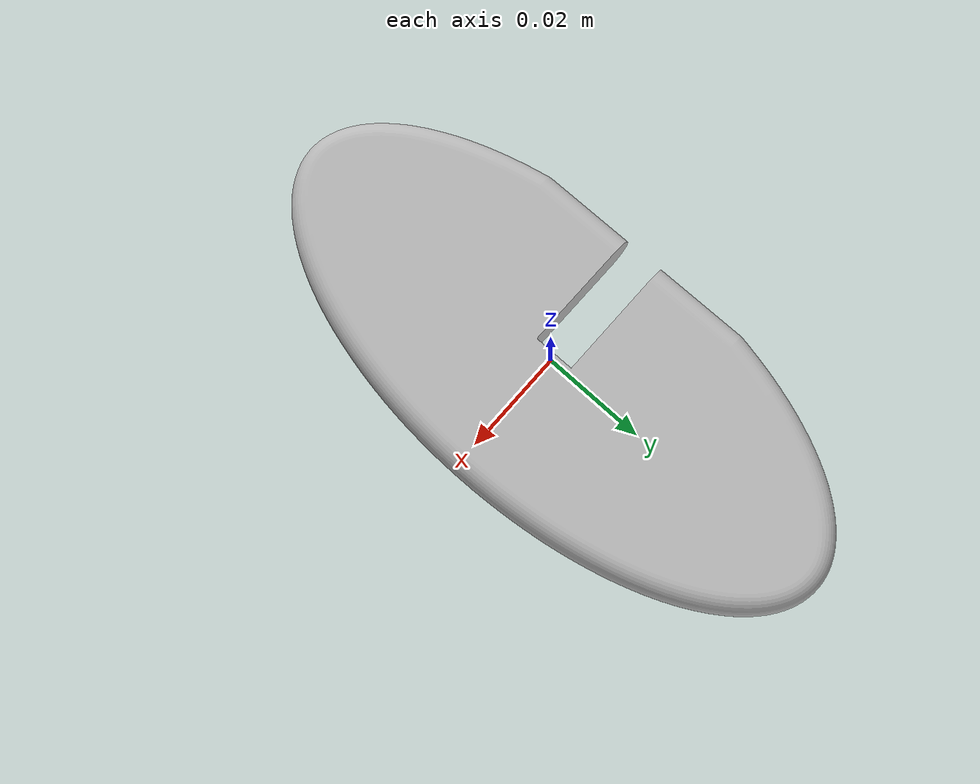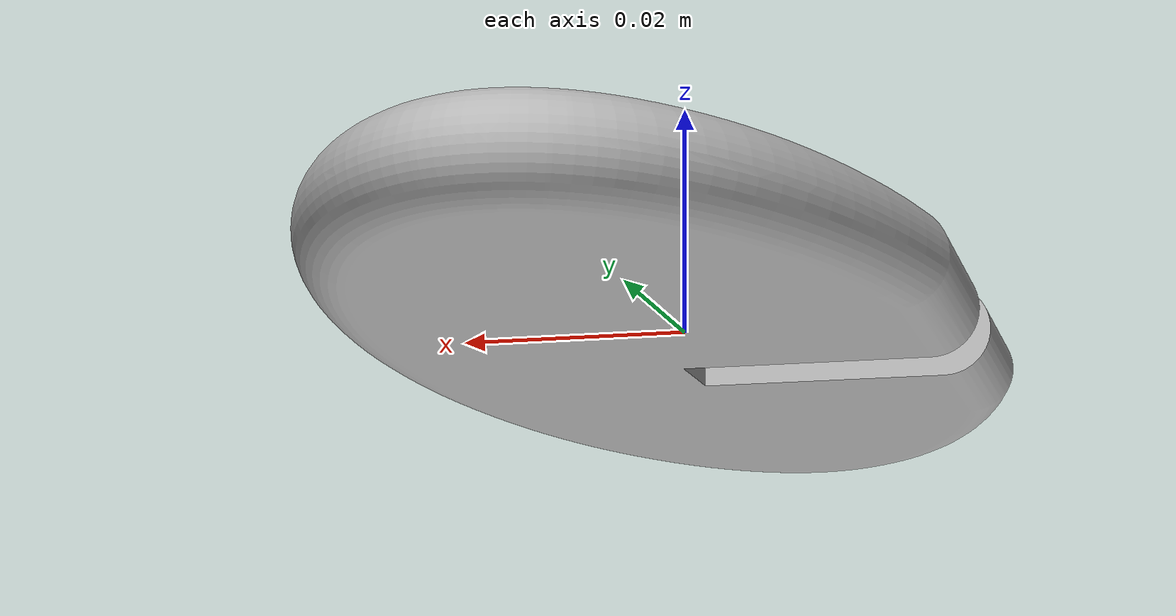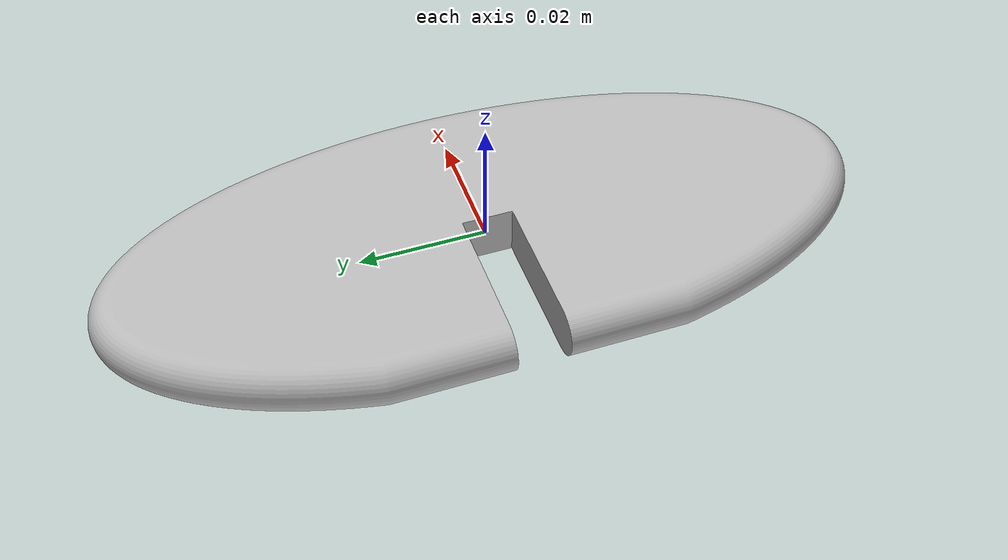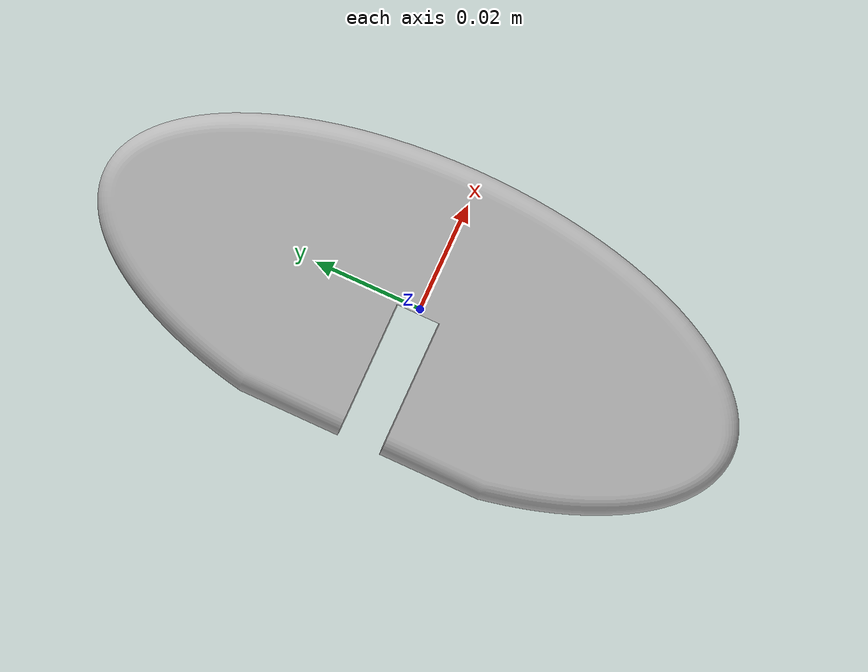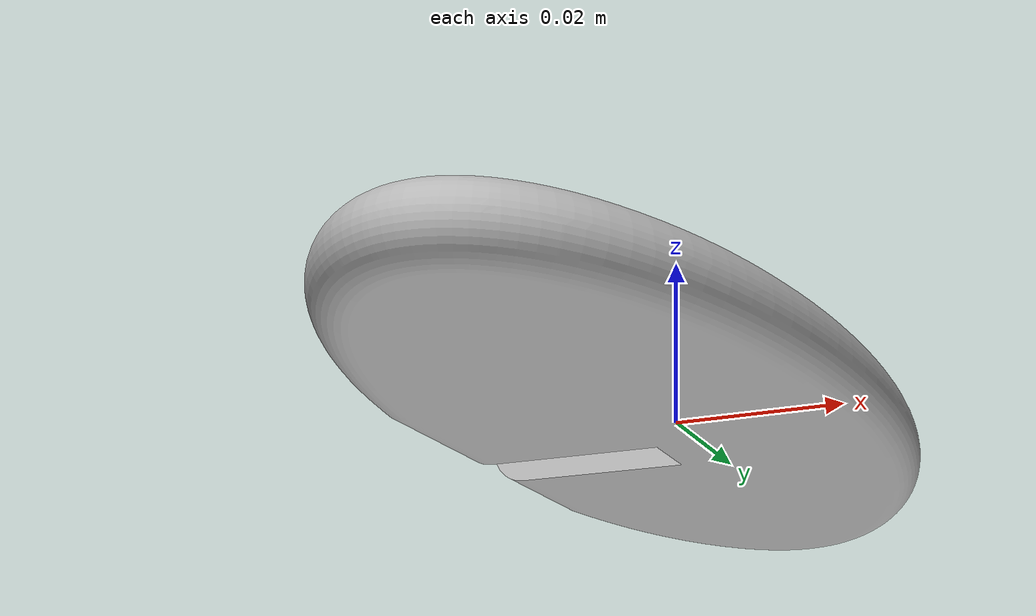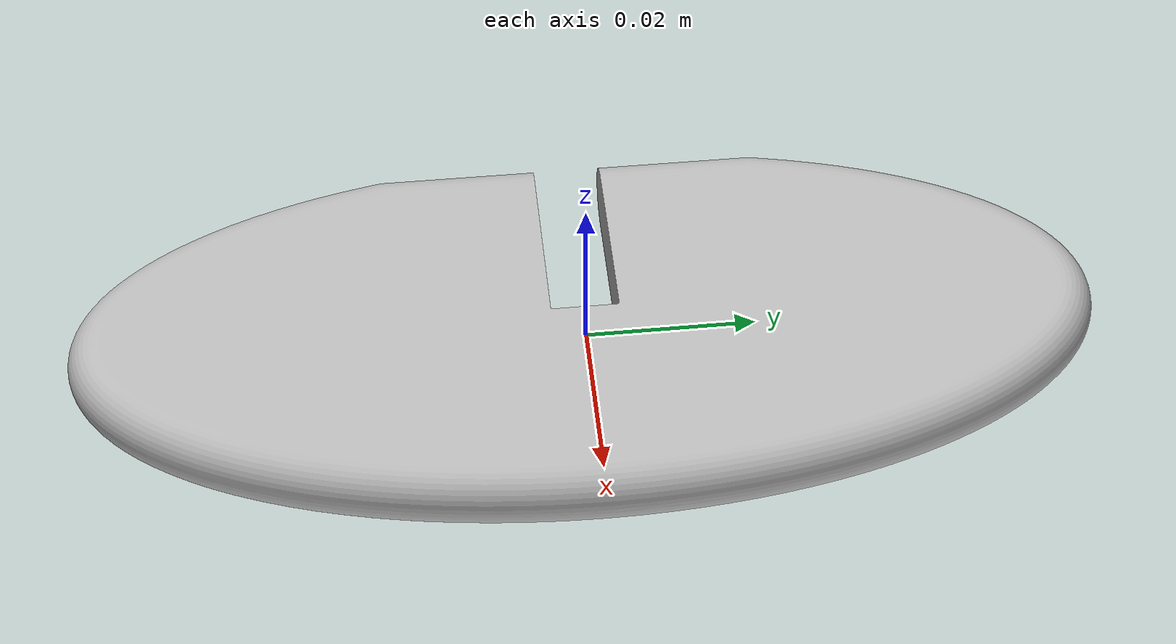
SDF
<?xml version="1.0" ?>
<sdf version="1.6">
  <model name="7)Horizontal Tail">
    <static>true</static>
    <link name="link">
      <collision name="collision">
        <geometry>
          <mesh>
            <scale>0.001 0.001 0.001</scale>
            <uri>model://7)Horizontal Tail/7)Horizontal Tail.stl</uri>
          </mesh>
        </geometry>
      </collision>
      <visual name="visual">
        <geometry>
          <mesh>
            <scale>0.001 0.001 0.001</scale>
            <uri>model://7)Horizontal Tail/7)Horizontal Tail.dae</uri>
          </mesh>
        </geometry>
      </visual>
    </link>
  </model>
</sdf>
